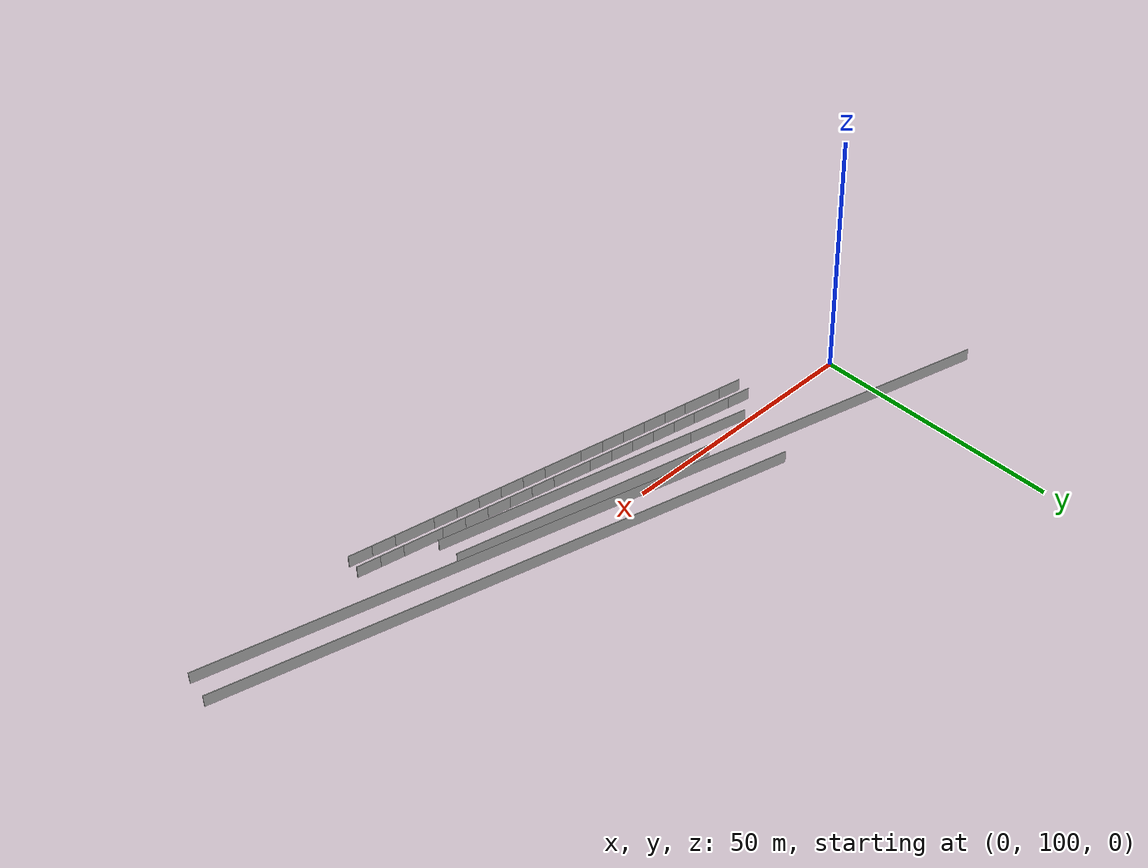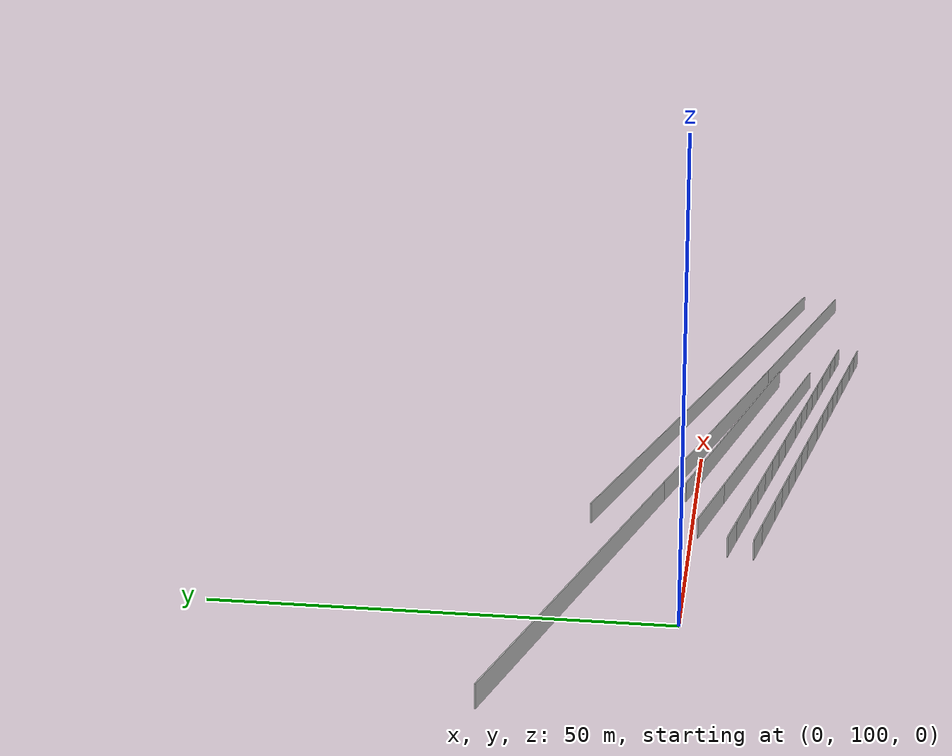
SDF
<?xml version="1.0" ?>
<sdf version="1.6">
  <model name="sps_0502">
    <pose frame="">0 0 0 0 -0 0</pose>
    <static>1</static>
    <self_collide>0</self_collide>
    <allow_auto_disable>0</allow_auto_disable>
    <link name="Wall105">
      <kinematic>0</kinematic>
      <gravity>1</gravity>
      <self_collide>0</self_collide>
      <collision name="collision">
        <geometry>
          <box>
            <size>51.5639 0.15 2.5</size>
          </box>
        </geometry>
        <pose frame="">0 0 0 0 -0 0</pose>
      </collision>
      <visual name="visual">
        <geometry>
          <box>
            <size>51.5639 0.15 2.5</size>
          </box>
        </geometry>
        <pose frame="">0 0 0 0 -0 0</pose>
        <cast_shadows>1</cast_shadows>
        <transparency>0.0</transparency>
      </visual>
      <pose frame="">59.4694 97.6651 1.25 0 0 -0.246916</pose>
    </link>
    <link name="Wall341">
      <kinematic>0</kinematic>
      <gravity>1</gravity>
      <self_collide>0</self_collide>
      <collision name="collision">
        <geometry>
          <box>
            <size>51.3314 0.15 2.5</size>
          </box>
        </geometry>
        <pose frame="">0 0 0 0 -0 0</pose>
      </collision>
      <visual name="visual">
        <geometry>
          <box>
            <size>51.3314 0.15 2.5</size>
          </box>
        </geometry>
        <pose frame="">0 0 0 0 -0 0</pose>
        <cast_shadows>1</cast_shadows>
        <transparency>0.0</transparency>
      </visual>
      <pose frame="">59.4694 95.4483 1.25 0 -0 2.91334</pose>
    </link>
    <link name="Wall514">
      <kinematic>0</kinematic>
      <gravity>1</gravity>
      <self_collide>0</self_collide>
      <collision name="collision">
        <geometry>
          <box>
            <size>51.3386 0.15 2.5</size>
          </box>
        </geometry>
        <pose frame="">0 0 0 0 -0 0</pose>
      </collision>
      <visual name="visual">
        <geometry>
          <box>
            <size>51.3386 0.15 2.5</size>
          </box>
        </geometry>
        <pose frame="">0 0 0 0 -0 0</pose>
        <cast_shadows>1</cast_shadows>
        <transparency>0.0</transparency>
      </visual>
      <pose frame="">59.4694 90.7798 1.25 0 -0 2.91274</pose>
    </link>
    <link name="Wall515">
      <kinematic>0</kinematic>
      <gravity>1</gravity>
      <self_collide>0</self_collide>
      <collision name="collision">
        <geometry>
          <box>
            <size>11.7378 0.15 2.5</size>
          </box>
        </geometry>
        <pose frame="">0 0 0 0 -0 0</pose>
      </collision>
      <visual name="visual">
        <geometry>
          <box>
            <size>11.7378 0.15 2.5</size>
          </box>
        </geometry>
        <pose frame="">0 0 0 0 -0 0</pose>
        <cast_shadows>1</cast_shadows>
        <transparency>0.0</transparency>
      </visual>
      <pose frame="">28.7536 97.9346 1.25 0 -0 2.91274</pose>
    </link>
    <link name="Wall1396">
      <kinematic>0</kinematic>
      <gravity>1</gravity>
      <self_collide>0</self_collide>
      <collision name="collision">
        <geometry>
          <box>
            <size>156.523 0.15 2.5</size>
          </box>
        </geometry>
        <pose frame="">0 0 0 0 -0 0</pose>
      </collision>
      <visual name="visual">
        <geometry>
          <box>
            <size>156.523 0.15 2.5</size>
          </box>
        </geometry>
        <pose frame="">0 0 0 0 -0 0</pose>
        <cast_shadows>1</cast_shadows>
        <transparency>0.0</transparency>
      </visual>
      <pose frame="">56.8476 98.3261 1.25 0 -0 2.89468</pose>
    </link>
    <link name="Wall1407">
      <kinematic>0</kinematic>
      <gravity>1</gravity>
      <self_collide>0</self_collide>
      <collision name="collision">
        <geometry>
          <box>
            <size>111.247 0.15 2.5</size>
          </box>
        </geometry>
        <pose frame="">0 0 0 0 -0 0</pose>
      </collision>
      <visual name="visual">
        <geometry>
          <box>
            <size>111.247 0.15 2.5</size>
          </box>
        </geometry>
        <pose frame="">0 0 0 0 -0 0</pose>
        <cast_shadows>1</cast_shadows>
        <transparency>0.0</transparency>
      </visual>
      <pose frame="">80.1177 98.4644 1.25 0 0 -0.248186</pose>
    </link>
    <link name="Wall2709">
      <kinematic>0</kinematic>
      <gravity>1</gravity>
      <self_collide>0</self_collide>
      <collision name="collision">
        <geometry>
          <box>
            <size>4.52823 0.15 2.5</size>
          </box>
        </geometry>
        <pose frame="">0 0 0 0 -0 0</pose>
      </collision>
      <visual name="visual">
        <geometry>
          <box>
            <size>4.52823 0.15 2.5</size>
          </box>
        </geometry>
        <pose frame="">0 0 0 0 -0 0</pose>
        <cast_shadows>1</cast_shadows>
        <transparency>0.0</transparency>
      </visual>
      <pose frame="">19.7862 92.2946 1.25 0 0 -0.192931</pose>
    </link>
    <link name="Wall2710">
      <kinematic>0</kinematic>
      <gravity>1</gravity>
      <self_collide>0</self_collide>
      <collision name="collision">
        <geometry>
          <box>
            <size>7.66431 0.15 2.5</size>
          </box>
        </geometry>
        <pose frame="">0 0 0 0 -0 0</pose>
      </collision>
      <visual name="visual">
        <geometry>
          <box>
            <size>7.66431 0.15 2.5</size>
          </box>
        </geometry>
        <pose frame="">0 0 0 0 -0 0</pose>
        <cast_shadows>1</cast_shadows>
        <transparency>0.0</transparency>
      </visual>
      <pose frame="">25.7695 91.1265 1.25 0 0 -0.19273</pose>
    </link>
    <link name="Wall2711">
      <kinematic>0</kinematic>
      <gravity>1</gravity>
      <self_collide>0</self_collide>
      <collision name="collision">
        <geometry>
          <box>
            <size>4.52638 0.15 2.5</size>
          </box>
        </geometry>
        <pose frame="">0 0 0 0 -0 0</pose>
      </collision>
      <visual name="visual">
        <geometry>
          <box>
            <size>4.52638 0.15 2.5</size>
          </box>
        </geometry>
        <pose frame="">0 0 0 0 -0 0</pose>
        <cast_shadows>1</cast_shadows>
        <transparency>0.0</transparency>
      </visual>
      <pose frame="">31.7519 89.959 1.25 0 0 -0.192736</pose>
    </link>
    <link name="Wall2712">
      <kinematic>0</kinematic>
      <gravity>1</gravity>
      <self_collide>0</self_collide>
      <collision name="collision">
        <geometry>
          <box>
            <size>4.52647 0.15 2.5</size>
          </box>
        </geometry>
        <pose frame="">0 0 0 0 -0 0</pose>
      </collision>
      <visual name="visual">
        <geometry>
          <box>
            <size>4.52647 0.15 2.5</size>
          </box>
        </geometry>
        <pose frame="">0 0 0 0 -0 0</pose>
        <cast_shadows>1</cast_shadows>
        <transparency>0.0</transparency>
      </visual>
      <pose frame="">36.1945 89.0919 1.25 0 0 -0.192773</pose>
    </link>
    <link name="Wall2713">
      <kinematic>0</kinematic>
      <gravity>1</gravity>
      <self_collide>0</self_collide>
      <collision name="collision">
        <geometry>
          <box>
            <size>4.52893 0.15 2.5</size>
          </box>
        </geometry>
        <pose frame="">0 0 0 0 -0 0</pose>
      </collision>
      <visual name="visual">
        <geometry>
          <box>
            <size>4.52893 0.15 2.5</size>
          </box>
        </geometry>
        <pose frame="">0 0 0 0 -0 0</pose>
        <cast_shadows>1</cast_shadows>
        <transparency>0.0</transparency>
      </visual>
      <pose frame="">40.6384 88.2244 1.25 0 0 -0.192805</pose>
    </link>
    <link name="Wall2714">
      <kinematic>0</kinematic>
      <gravity>1</gravity>
      <self_collide>0</self_collide>
      <collision name="collision">
        <geometry>
          <box>
            <size>4.52664 0.15 2.5</size>
          </box>
        </geometry>
        <pose frame="">0 0 0 0 -0 0</pose>
      </collision>
      <visual name="visual">
        <geometry>
          <box>
            <size>4.52664 0.15 2.5</size>
          </box>
        </geometry>
        <pose frame="">0 0 0 0 -0 0</pose>
        <cast_shadows>1</cast_shadows>
        <transparency>0.0</transparency>
      </visual>
      <pose frame="">45.0824 87.3574 1.25 0 0 -0.192546</pose>
    </link>
    <link name="Wall2715">
      <kinematic>0</kinematic>
      <gravity>1</gravity>
      <self_collide>0</self_collide>
      <collision name="collision">
        <geometry>
          <box>
            <size>4.52692 0.15 2.5</size>
          </box>
        </geometry>
        <pose frame="">0 0 0 0 -0 0</pose>
      </collision>
      <visual name="visual">
        <geometry>
          <box>
            <size>4.52692 0.15 2.5</size>
          </box>
        </geometry>
        <pose frame="">0 0 0 0 -0 0</pose>
        <cast_shadows>1</cast_shadows>
        <transparency>0.0</transparency>
      </visual>
      <pose frame="">49.5253 86.49 1.25 0 0 -0.19307</pose>
    </link>
    <link name="Wall2716">
      <kinematic>0</kinematic>
      <gravity>1</gravity>
      <self_collide>0</self_collide>
      <collision name="collision">
        <geometry>
          <box>
            <size>7.6645 0.15 2.5</size>
          </box>
        </geometry>
        <pose frame="">0 0 0 0 -0 0</pose>
      </collision>
      <visual name="visual">
        <geometry>
          <box>
            <size>7.6645 0.15 2.5</size>
          </box>
        </geometry>
        <pose frame="">0 0 0 0 -0 0</pose>
        <cast_shadows>1</cast_shadows>
        <transparency>0.0</transparency>
      </visual>
      <pose frame="">55.508 85.3221 1.25 0 0 -0.192612</pose>
    </link>
    <link name="Wall2717">
      <kinematic>0</kinematic>
      <gravity>1</gravity>
      <self_collide>0</self_collide>
      <collision name="collision">
        <geometry>
          <box>
            <size>4.5263 0.15 2.5</size>
          </box>
        </geometry>
        <pose frame="">0 0 0 0 -0 0</pose>
      </collision>
      <visual name="visual">
        <geometry>
          <box>
            <size>4.5263 0.15 2.5</size>
          </box>
        </geometry>
        <pose frame="">0 0 0 0 -0 0</pose>
        <cast_shadows>1</cast_shadows>
        <transparency>0.0</transparency>
      </visual>
      <pose frame="">61.4907 84.1549 1.25 0 0 -0.192794</pose>
    </link>
    <link name="Wall2718">
      <kinematic>0</kinematic>
      <gravity>1</gravity>
      <self_collide>0</self_collide>
      <collision name="collision">
        <geometry>
          <box>
            <size>4.52507 0.15 2.5</size>
          </box>
        </geometry>
        <pose frame="">0 0 0 0 -0 0</pose>
      </collision>
      <visual name="visual">
        <geometry>
          <box>
            <size>4.52507 0.15 2.5</size>
          </box>
        </geometry>
        <pose frame="">0 0 0 0 -0 0</pose>
        <cast_shadows>1</cast_shadows>
        <transparency>0.0</transparency>
      </visual>
      <pose frame="">65.9325 83.2876 1.25 0 0 -0.192875</pose>
    </link>
    <link name="Wall2719">
      <kinematic>0</kinematic>
      <gravity>1</gravity>
      <self_collide>0</self_collide>
      <collision name="collision">
        <geometry>
          <box>
            <size>4.52514 0.15 2.5</size>
          </box>
        </geometry>
        <pose frame="">0 0 0 0 -0 0</pose>
      </collision>
      <visual name="visual">
        <geometry>
          <box>
            <size>4.52514 0.15 2.5</size>
          </box>
        </geometry>
        <pose frame="">0 0 0 0 -0 0</pose>
        <cast_shadows>1</cast_shadows>
        <transparency>0.0</transparency>
      </visual>
      <pose frame="">70.3736 82.4202 1.25 0 0 -0.192885</pose>
    </link>
    <link name="Wall2720">
      <kinematic>0</kinematic>
      <gravity>1</gravity>
      <self_collide>0</self_collide>
      <collision name="collision">
        <geometry>
          <box>
            <size>4.5275 0.15 2.5</size>
          </box>
        </geometry>
        <pose frame="">0 0 0 0 -0 0</pose>
      </collision>
      <visual name="visual">
        <geometry>
          <box>
            <size>4.5275 0.15 2.5</size>
          </box>
        </geometry>
        <pose frame="">0 0 0 0 -0 0</pose>
        <cast_shadows>1</cast_shadows>
        <transparency>0.0</transparency>
      </visual>
      <pose frame="">74.8161 81.5527 1.25 0 0 -0.192811</pose>
    </link>
    <link name="Wall2721">
      <kinematic>0</kinematic>
      <gravity>1</gravity>
      <self_collide>0</self_collide>
      <collision name="collision">
        <geometry>
          <box>
            <size>4.52485 0.15 2.5</size>
          </box>
        </geometry>
        <pose frame="">0 0 0 0 -0 0</pose>
      </collision>
      <visual name="visual">
        <geometry>
          <box>
            <size>4.52485 0.15 2.5</size>
          </box>
        </geometry>
        <pose frame="">0 0 0 0 -0 0</pose>
        <cast_shadows>1</cast_shadows>
        <transparency>0.0</transparency>
      </visual>
      <pose frame="">79.2584 80.6858 1.25 0 0 -0.192623</pose>
    </link>
    <link name="Wall2722">
      <kinematic>0</kinematic>
      <gravity>1</gravity>
      <self_collide>0</self_collide>
      <collision name="collision">
        <geometry>
          <box>
            <size>7.66081 0.15 2.5</size>
          </box>
        </geometry>
        <pose frame="">0 0 0 0 -0 0</pose>
      </collision>
      <visual name="visual">
        <geometry>
          <box>
            <size>7.66081 0.15 2.5</size>
          </box>
        </geometry>
        <pose frame="">0 0 0 0 -0 0</pose>
        <cast_shadows>1</cast_shadows>
        <transparency>0.0</transparency>
      </visual>
      <pose frame="">85.2385 79.5192 1.25 0 0 -0.192681</pose>
    </link>
    <link name="Wall2723">
      <kinematic>0</kinematic>
      <gravity>1</gravity>
      <self_collide>0</self_collide>
      <collision name="collision">
        <geometry>
          <box>
            <size>4.52422 0.15 2.5</size>
          </box>
        </geometry>
        <pose frame="">0 0 0 0 -0 0</pose>
      </collision>
      <visual name="visual">
        <geometry>
          <box>
            <size>4.52422 0.15 2.5</size>
          </box>
        </geometry>
        <pose frame="">0 0 0 0 -0 0</pose>
        <cast_shadows>1</cast_shadows>
        <transparency>0.0</transparency>
      </visual>
      <pose frame="">91.2183 78.3522 1.25 0 0 -0.192829</pose>
    </link>
    <link name="Wall2724">
      <kinematic>0</kinematic>
      <gravity>1</gravity>
      <self_collide>0</self_collide>
      <collision name="collision">
        <geometry>
          <box>
            <size>4.52177 0.15 2.5</size>
          </box>
        </geometry>
        <pose frame="">0 0 0 0 -0 0</pose>
      </collision>
      <visual name="visual">
        <geometry>
          <box>
            <size>4.52177 0.15 2.5</size>
          </box>
        </geometry>
        <pose frame="">0 0 0 0 -0 0</pose>
        <cast_shadows>1</cast_shadows>
        <transparency>0.0</transparency>
      </visual>
      <pose frame="">95.6574 77.4855 1.25 0 0 -0.192797</pose>
    </link>
    <link name="Wall3552">
      <kinematic>0</kinematic>
      <gravity>1</gravity>
      <self_collide>0</self_collide>
      <collision name="collision">
        <geometry>
          <box>
            <size>4.52826 0.15 2.5</size>
          </box>
        </geometry>
        <pose frame="">0 0 0 0 -0 0</pose>
      </collision>
      <visual name="visual">
        <geometry>
          <box>
            <size>4.52826 0.15 2.5</size>
          </box>
        </geometry>
        <pose frame="">0 0 0 0 -0 0</pose>
        <cast_shadows>1</cast_shadows>
        <transparency>0.0</transparency>
      </visual>
      <pose frame="">20.3612 95.2391 1.25 0 0 -0.192971</pose>
    </link>
    <link name="Wall3553">
      <kinematic>0</kinematic>
      <gravity>1</gravity>
      <self_collide>0</self_collide>
      <collision name="collision">
        <geometry>
          <box>
            <size>7.66407 0.15 2.5</size>
          </box>
        </geometry>
        <pose frame="">0 0 0 0 -0 0</pose>
      </collision>
      <visual name="visual">
        <geometry>
          <box>
            <size>7.66407 0.15 2.5</size>
          </box>
        </geometry>
        <pose frame="">0 0 0 0 -0 0</pose>
        <cast_shadows>1</cast_shadows>
        <transparency>0.0</transparency>
      </visual>
      <pose frame="">26.3444 94.0709 1.25 0 0 -0.192737</pose>
    </link>
    <link name="Wall3554">
      <kinematic>0</kinematic>
      <gravity>1</gravity>
      <self_collide>0</self_collide>
      <collision name="collision">
        <geometry>
          <box>
            <size>4.52647 0.15 2.5</size>
          </box>
        </geometry>
        <pose frame="">0 0 0 0 -0 0</pose>
      </collision>
      <visual name="visual">
        <geometry>
          <box>
            <size>4.52647 0.15 2.5</size>
          </box>
        </geometry>
        <pose frame="">0 0 0 0 -0 0</pose>
        <cast_shadows>1</cast_shadows>
        <transparency>0.0</transparency>
      </visual>
      <pose frame="">32.3267 92.9033 1.25 0 0 -0.192773</pose>
    </link>
    <link name="Wall3555">
      <kinematic>0</kinematic>
      <gravity>1</gravity>
      <self_collide>0</self_collide>
      <collision name="collision">
        <geometry>
          <box>
            <size>4.52647 0.15 2.5</size>
          </box>
        </geometry>
        <pose frame="">0 0 0 0 -0 0</pose>
      </collision>
      <visual name="visual">
        <geometry>
          <box>
            <size>4.52647 0.15 2.5</size>
          </box>
        </geometry>
        <pose frame="">0 0 0 0 -0 0</pose>
        <cast_shadows>1</cast_shadows>
        <transparency>0.0</transparency>
      </visual>
      <pose frame="">36.7694 92.0361 1.25 0 0 -0.192773</pose>
    </link>
    <link name="Wall3556">
      <kinematic>0</kinematic>
      <gravity>1</gravity>
      <self_collide>0</self_collide>
      <collision name="collision">
        <geometry>
          <box>
            <size>4.52829 0.15 2.5</size>
          </box>
        </geometry>
        <pose frame="">0 0 0 0 -0 0</pose>
      </collision>
      <visual name="visual">
        <geometry>
          <box>
            <size>4.52829 0.15 2.5</size>
          </box>
        </geometry>
        <pose frame="">0 0 0 0 -0 0</pose>
        <cast_shadows>1</cast_shadows>
        <transparency>0.0</transparency>
      </visual>
      <pose frame="">41.2129 91.1687 1.25 0 0 -0.192791</pose>
    </link>
    <link name="Wall3557">
      <kinematic>0</kinematic>
      <gravity>1</gravity>
      <self_collide>0</self_collide>
      <collision name="collision">
        <geometry>
          <box>
            <size>4.52724 0.15 2.5</size>
          </box>
        </geometry>
        <pose frame="">0 0 0 0 -0 0</pose>
      </collision>
      <visual name="visual">
        <geometry>
          <box>
            <size>4.52724 0.15 2.5</size>
          </box>
        </geometry>
        <pose frame="">0 0 0 0 -0 0</pose>
        <cast_shadows>1</cast_shadows>
        <transparency>0.0</transparency>
      </visual>
      <pose frame="">45.6569 90.3018 1.25 0 0 -0.19252</pose>
    </link>
    <link name="Wall3558">
      <kinematic>0</kinematic>
      <gravity>1</gravity>
      <self_collide>0</self_collide>
      <collision name="collision">
        <geometry>
          <box>
            <size>4.52681 0.15 2.5</size>
          </box>
        </geometry>
        <pose frame="">0 0 0 0 -0 0</pose>
      </collision>
      <visual name="visual">
        <geometry>
          <box>
            <size>4.52681 0.15 2.5</size>
          </box>
        </geometry>
        <pose frame="">0 0 0 0 -0 0</pose>
        <cast_shadows>1</cast_shadows>
        <transparency>0.0</transparency>
      </visual>
      <pose frame="">50.1001 89.4345 1.25 0 0 -0.193019</pose>
    </link>
    <link name="Wall3559">
      <kinematic>0</kinematic>
      <gravity>1</gravity>
      <self_collide>0</self_collide>
      <collision name="collision">
        <geometry>
          <box>
            <size>7.66439 0.15 2.5</size>
          </box>
        </geometry>
        <pose frame="">0 0 0 0 -0 0</pose>
      </collision>
      <visual name="visual">
        <geometry>
          <box>
            <size>7.66439 0.15 2.5</size>
          </box>
        </geometry>
        <pose frame="">0 0 0 0 -0 0</pose>
        <cast_shadows>1</cast_shadows>
        <transparency>0.0</transparency>
      </visual>
      <pose frame="">56.0828 88.2667 1.25 0 0 -0.192623</pose>
    </link>
    <link name="Wall3560">
      <kinematic>0</kinematic>
      <gravity>1</gravity>
      <self_collide>0</self_collide>
      <collision name="collision">
        <geometry>
          <box>
            <size>4.52664 0.15 2.5</size>
          </box>
        </geometry>
        <pose frame="">0 0 0 0 -0 0</pose>
      </collision>
      <visual name="visual">
        <geometry>
          <box>
            <size>4.52664 0.15 2.5</size>
          </box>
        </geometry>
        <pose frame="">0 0 0 0 -0 0</pose>
        <cast_shadows>1</cast_shadows>
        <transparency>0.0</transparency>
      </visual>
      <pose frame="">62.0655 87.0994 1.25 0 0 -0.192821</pose>
    </link>
    <link name="Wall3561">
      <kinematic>0</kinematic>
      <gravity>1</gravity>
      <self_collide>0</self_collide>
      <collision name="collision">
        <geometry>
          <box>
            <size>4.52513 0.15 2.5</size>
          </box>
        </geometry>
        <pose frame="">0 0 0 0 -0 0</pose>
      </collision>
      <visual name="visual">
        <geometry>
          <box>
            <size>4.52513 0.15 2.5</size>
          </box>
        </geometry>
        <pose frame="">0 0 0 0 -0 0</pose>
        <cast_shadows>1</cast_shadows>
        <transparency>0.0</transparency>
      </visual>
      <pose frame="">66.5074 86.232 1.25 0 0 -0.192872</pose>
    </link>
    <link name="Wall3562">
      <kinematic>0</kinematic>
      <gravity>1</gravity>
      <self_collide>0</self_collide>
      <collision name="collision">
        <geometry>
          <box>
            <size>4.52509 0.15 2.5</size>
          </box>
        </geometry>
        <pose frame="">0 0 0 0 -0 0</pose>
      </collision>
      <visual name="visual">
        <geometry>
          <box>
            <size>4.52509 0.15 2.5</size>
          </box>
        </geometry>
        <pose frame="">0 0 0 0 -0 0</pose>
        <cast_shadows>1</cast_shadows>
        <transparency>0.0</transparency>
      </visual>
      <pose frame="">70.9487 85.3647 1.25 0 0 -0.192832</pose>
    </link>
    <link name="Wall3563">
      <kinematic>0</kinematic>
      <gravity>1</gravity>
      <self_collide>0</self_collide>
      <collision name="collision">
        <geometry>
          <box>
            <size>4.52731 0.15 2.5</size>
          </box>
        </geometry>
        <pose frame="">0 0 0 0 -0 0</pose>
      </collision>
      <visual name="visual">
        <geometry>
          <box>
            <size>4.52731 0.15 2.5</size>
          </box>
        </geometry>
        <pose frame="">0 0 0 0 -0 0</pose>
        <cast_shadows>1</cast_shadows>
        <transparency>0.0</transparency>
      </visual>
      <pose frame="">75.391 84.4972 1.25 0 0 -0.192874</pose>
    </link>
    <link name="Wall3564">
      <kinematic>0</kinematic>
      <gravity>1</gravity>
      <self_collide>0</self_collide>
      <collision name="collision">
        <geometry>
          <box>
            <size>4.52445 0.15 2.5</size>
          </box>
        </geometry>
        <pose frame="">0 0 0 0 -0 0</pose>
      </collision>
      <visual name="visual">
        <geometry>
          <box>
            <size>4.52445 0.15 2.5</size>
          </box>
        </geometry>
        <pose frame="">0 0 0 0 -0 0</pose>
        <cast_shadows>1</cast_shadows>
        <transparency>0.0</transparency>
      </visual>
      <pose frame="">79.833 83.6303 1.25 0 0 -0.192599</pose>
    </link>
    <link name="Wall3565">
      <kinematic>0</kinematic>
      <gravity>1</gravity>
      <self_collide>0</self_collide>
      <collision name="collision">
        <geometry>
          <box>
            <size>7.66103 0.15 2.5</size>
          </box>
        </geometry>
        <pose frame="">0 0 0 0 -0 0</pose>
      </collision>
      <visual name="visual">
        <geometry>
          <box>
            <size>7.66103 0.15 2.5</size>
          </box>
        </geometry>
        <pose frame="">0 0 0 0 -0 0</pose>
        <cast_shadows>1</cast_shadows>
        <transparency>0.0</transparency>
      </visual>
      <pose frame="">85.813 82.4637 1.25 0 0 -0.1927</pose>
    </link>
    <link name="Wall3566">
      <kinematic>0</kinematic>
      <gravity>1</gravity>
      <self_collide>0</self_collide>
      <collision name="collision">
        <geometry>
          <box>
            <size>4.52442 0.15 2.5</size>
          </box>
        </geometry>
        <pose frame="">0 0 0 0 -0 0</pose>
      </collision>
      <visual name="visual">
        <geometry>
          <box>
            <size>4.52442 0.15 2.5</size>
          </box>
        </geometry>
        <pose frame="">0 0 0 0 -0 0</pose>
        <cast_shadows>1</cast_shadows>
        <transparency>0.0</transparency>
      </visual>
      <pose frame="">91.793 81.2967 1.25 0 0 -0.192779</pose>
    </link>
    <link name="Wall3567">
      <kinematic>0</kinematic>
      <gravity>1</gravity>
      <self_collide>0</self_collide>
      <collision name="collision">
        <geometry>
          <box>
            <size>4.52198 0.15 2.5</size>
          </box>
        </geometry>
        <pose frame="">0 0 0 0 -0 0</pose>
      </collision>
      <visual name="visual">
        <geometry>
          <box>
            <size>4.52198 0.15 2.5</size>
          </box>
        </geometry>
        <pose frame="">0 0 0 0 -0 0</pose>
        <cast_shadows>1</cast_shadows>
        <transparency>0.0</transparency>
      </visual>
      <pose frame="">96.2324 80.43 1.25 0 0 -0.192829</pose>
    </link>
  </model>
</sdf>
